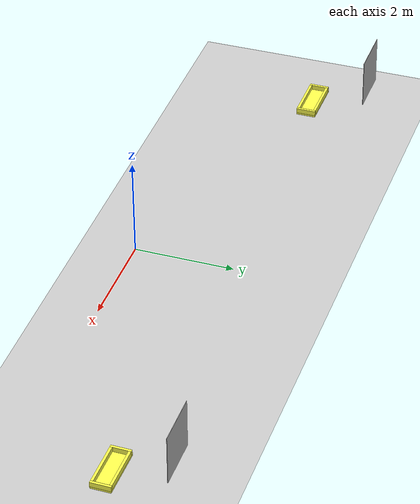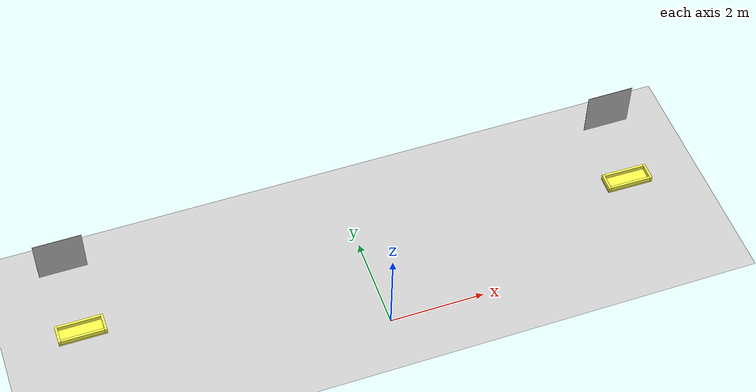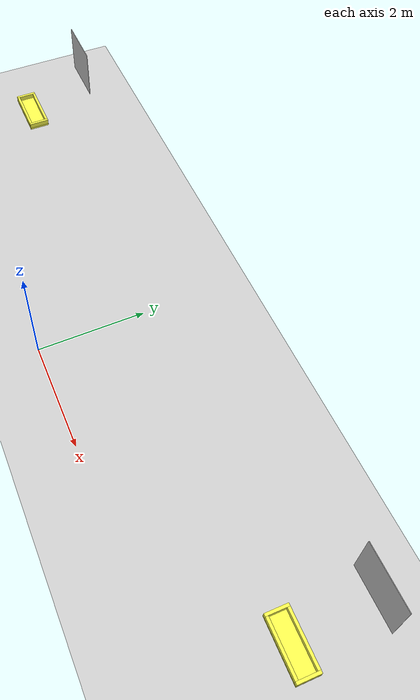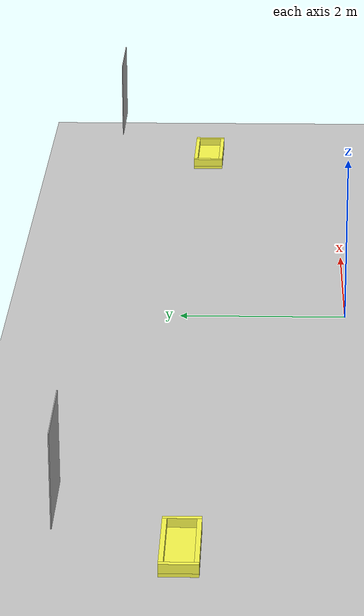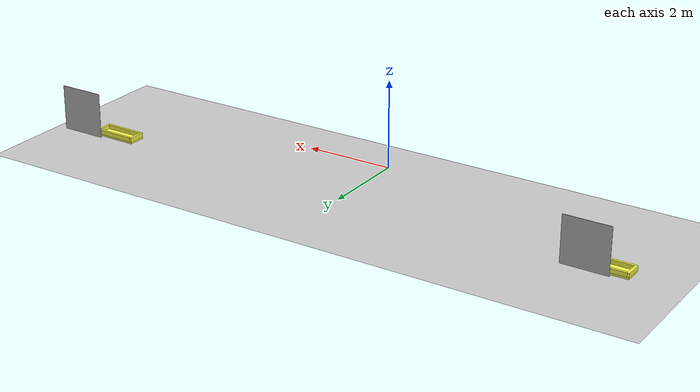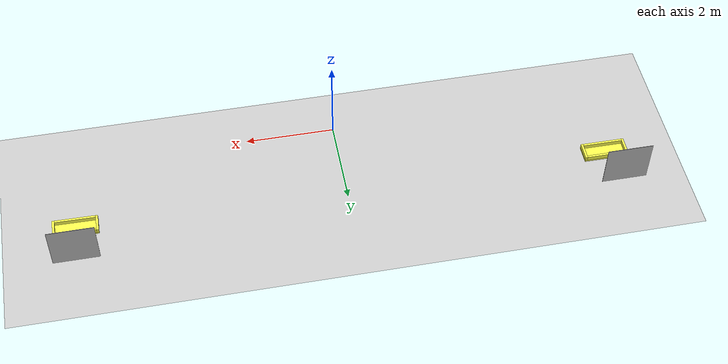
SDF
<sdf version="1.6">
 <world name="default">
  <light name="sun" type="directional">
   <pose>0 0 10 0 -0 0</pose>
   <diffuse>0.8 0.8 0.8 1</diffuse>
   <specular>0.2 0.2 0.2 1</specular>
   <attenuation>
    <range>1000</range>
    <constant>0.9</constant>
    <linear>0.01</linear>
    <quadratic>0.001</quadratic>
   </attenuation>
   <direction>-0.5 0.1 -0.9</direction>
  </light>
  <model name="ground_plane">
   <static>1</static>
   <link name="link">
    <collision name="collision">
     <geometry><plane><normal>0 0 1</normal><size>100 100</size></plane></geometry>
     <surface><friction><ode><mu>100</mu><mu2>50</mu2></ode></friction></surface>
    </collision>
    <visual name="visual">
     <cast_shadows>0</cast_shadows>
     <geometry><plane><normal>0 0 1</normal><size>100 100</size></plane></geometry>
     <material>
      <script><uri>file://media/materials/scripts/gazebo.material</uri><name>Gazebo/Grey</name></script>
     </material>
    </visual>
   </link>
  </model>
  <gravity>0 0 -9.8</gravity>
  <magnetic_field>6e-06 2.3e-05 -4.2e-05</magnetic_field>
  <atmosphere type="adiabatic"/>
  <physics name="default_physics" default="0" type="ode">
   <max_step_size>0.001</max_step_size>
   <real_time_factor>1</real_time_factor>
   <real_time_update_rate>1000</real_time_update_rate>
  </physics>
  <scene><ambient>0.4 0.4 0.4 1</ambient><background>0.7 0.7 0.7 1</background><shadows>1</shadows></scene>
  <audio><device>default</device></audio>
  <spherical_coordinates>
   <surface_model>EARTH_WGS84</surface_model>
   <latitude_deg>0</latitude_deg>
   <longitude_deg>0</longitude_deg>
   <elevation>0</elevation>
   <heading_deg>0</heading_deg>
  </spherical_coordinates>
  <model name="Apriltag36_11_00001">
   <link name="main">
    <visual name="main_Visual">
     <geometry><box><size>1 1 0.01</size></box></geometry>
     <material>
      <script>
       <uri>model://Apriltag36_11_00001/materials/scripts</uri>
       <uri>model://Apriltag36_11_00001/materials/textures</uri>
       <name>Apriltag36_11_00001</name>
      </script>
     </material>
    </visual>
   </link>
   <static>1</static>
   <pose>6 3 1 1.57 -0 0</pose>
  </model>
  <model name="Apriltag36_11_00002">
   <link name="main">
    <visual name="main_Visual">
     <geometry><box><size>1 1 0.01</size></box></geometry>
     <material>
      <script>
       <uri>model://Apriltag36_11_00002/materials/scripts</uri>
       <uri>model://Apriltag36_11_00002/materials/textures</uri>
       <name>Apriltag36_11_00002</name>
      </script>
     </material>
    </visual>
   </link>
   <static>1</static>
   <pose>-6 3 1 1.57 -0 0</pose>
  </model>
  <model name="place_box">
   <link name="link">
    <inertial>
     <mass>1</mass>
     <inertia>
      <ixx>0.166667</ixx>
      <ixy>0</ixy>
      <ixz>0</ixz>
      <iyy>0.166667</iyy>
      <iyz>0</iyz>
      <izz>0.166667</izz>
     </inertia>
    </inertial>
    <visual name="visual">
     <geometry><box><size>0.4 1 0.05</size></box></geometry>
     <material>
      <script><name>Gazebo/Grey</name><uri>file://media/materials/scripts/gazebo.material</uri></script>
      <shader type="vertex"><normal_map>__default__</normal_map></shader>
      <ambient>1 1 0.3 1</ambient>
      <diffuse>0.7 0.7 0.7 1</diffuse>
      <specular>0.01 0.01 0.01 1</specular>
      <emissive>0 0 0 1</emissive>
     </material>
    </visual>
    <collision name="collision">
     <geometry><box><size>0.4 1 0.05</size></box></geometry>
     <surface>
      <friction>
       <ode><mu>1</mu><mu2>1</mu2><fdir1>0 0 0</fdir1><slip1>0</slip1><slip2>0</slip2></ode>
       <torsional>
        <coefficient>1</coefficient>
        <patch_radius>0</patch_radius>
        <surface_radius>0</surface_radius>
        <use_patch_radius>1</use_patch_radius>
        <ode><slip>0</slip></ode>
       </torsional>
      </friction>
      <bounce><restitution_coefficient>0</restitution_coefficient><threshold>1e+06</threshold></bounce>
      <contact>
       <collide_without_contact>0</collide_without_contact>
       <collide_without_contact_bitmask>1</collide_without_contact_bitmask>
       <collide_bitmask>1</collide_bitmask>
       <ode>
        <soft_cfm>0</soft_cfm>
        <soft_erp>0.2</soft_erp>
        <kp>1e+13</kp>
        <kd>1</kd>
        <max_vel>0.01</max_vel>
        <min_depth>0</min_depth>
       </ode>
       <bullet>
        <split_impulse>1</split_impulse>
        <split_impulse_penetration_threshold>-0.01</split_impulse_penetration_threshold>
        <soft_cfm>0</soft_cfm>
        <soft_erp>0.2</soft_erp>
        <kp>1e+13</kp>
        <kd>1</kd>
       </bullet>
      </contact>
     </surface>
    </collision>
   </link>
   <link name="link_0">
    <inertial>
     <mass>1</mass>
     <inertia>
      <ixx>0.166667</ixx>
      <ixy>0</ixy>
      <ixz>0</ixz>
      <iyy>0.166667</iyy>
      <iyz>0</iyz>
      <izz>0.166667</izz>
     </inertia>
    </inertial>
    <pose>-0 -0.475 0.075 0 -0 0</pose>
    <visual name="visual">
     <geometry><box><size>0.4 0.05 0.1</size></box></geometry>
     <material>
      <lighting>1</lighting>
      <script><uri>file://media/materials/scripts/gazebo.material</uri><name>Gazebo/Grey</name></script>
      <shader type="vertex"><normal_map>__default__</normal_map></shader>
      <ambient>1 1 0.3 1</ambient>
      <diffuse>0.7 0.7 0.7 1</diffuse>
      <specular>0.01 0.01 0.01 1</specular>
      <emissive>0 0 0 1</emissive>
     </material>
    </visual>
    <collision name="collision">
     <geometry><box><size>0.4 0.05 0.1</size></box></geometry>
     <surface>
      <friction>
       <ode><mu>1</mu><mu2>1</mu2><fdir1>0 0 0</fdir1><slip1>0</slip1><slip2>0</slip2></ode>
       <torsional>
        <coefficient>1</coefficient>
        <patch_radius>0</patch_radius>
        <surface_radius>0</surface_radius>
        <use_patch_radius>1</use_patch_radius>
        <ode><slip>0</slip></ode>
       </torsional>
      </friction>
      <bounce><restitution_coefficient>0</restitution_coefficient><threshold>1e+06</threshold></bounce>
      <contact>
       <collide_without_contact>0</collide_without_contact>
       <collide_without_contact_bitmask>1</collide_without_contact_bitmask>
       <collide_bitmask>1</collide_bitmask>
       <ode>
        <soft_cfm>0</soft_cfm>
        <soft_erp>0.2</soft_erp>
        <kp>1e+13</kp>
        <kd>1</kd>
        <max_vel>0.01</max_vel>
        <min_depth>0</min_depth>
       </ode>
       <bullet>
        <split_impulse>1</split_impulse>
        <split_impulse_penetration_threshold>-0.01</split_impulse_penetration_threshold>
        <soft_cfm>0</soft_cfm>
        <soft_erp>0.2</soft_erp>
        <kp>1e+13</kp>
        <kd>1</kd>
       </bullet>
      </contact>
     </surface>
    </collision>
   </link>
   <link name="link_0_clone">
    <inertial>
     <mass>1</mass>
     <inertia>
      <ixx>0.166667</ixx>
      <ixy>0</ixy>
      <ixz>0</ixz>
      <iyy>0.166667</iyy>
      <iyz>0</iyz>
      <izz>0.166667</izz>
     </inertia>
    </inertial>
    <pose>-0 0.475 0.075 0 -0 0</pose>
    <visual name="visual">
     <geometry><box><size>0.4 0.05 0.1</size></box></geometry>
     <material>
      <lighting>1</lighting>
      <script><uri>file://media/materials/scripts/gazebo.material</uri><name>Gazebo/Grey</name></script>
      <shader type="vertex"><normal_map>__default__</normal_map></shader>
      <ambient>1 1 0.3 1</ambient>
      <diffuse>0.7 0.7 0.7 1</diffuse>
      <specular>0.01 0.01 0.01 1</specular>
      <emissive>0 0 0 1</emissive>
     </material>
    </visual>
    <collision name="collision">
     <geometry><box><size>0.4 0.05 0.1</size></box></geometry>
     <surface>
      <friction>
       <ode><mu>1</mu><mu2>1</mu2><fdir1>0 0 0</fdir1><slip1>0</slip1><slip2>0</slip2></ode>
       <torsional>
        <coefficient>1</coefficient>
        <patch_radius>0</patch_radius>
        <surface_radius>0</surface_radius>
        <use_patch_radius>1</use_patch_radius>
        <ode><slip>0</slip></ode>
       </torsional>
      </friction>
      <bounce><restitution_coefficient>0</restitution_coefficient><threshold>1e+06</threshold></bounce>
      <contact>
       <collide_without_contact>0</collide_without_contact>
       <collide_without_contact_bitmask>1</collide_without_contact_bitmask>
       <collide_bitmask>1</collide_bitmask>
       <ode>
        <soft_cfm>0</soft_cfm>
        <soft_erp>0.2</soft_erp>
        <kp>1e+13</kp>
        <kd>1</kd>
        <max_vel>0.01</max_vel>
        <min_depth>0</min_depth>
       </ode>
       <bullet>
        <split_impulse>1</split_impulse>
        <split_impulse_penetration_threshold>-0.01</split_impulse_penetration_threshold>
        <soft_cfm>0</soft_cfm>
        <soft_erp>0.2</soft_erp>
        <kp>1e+13</kp>
        <kd>1</kd>
       </bullet>
      </contact>
     </surface>
    </collision>
   </link>
   <link name="link_2">
    <inertial>
     <mass>1</mass>
     <inertia>
      <ixx>0.166667</ixx>
      <ixy>0</ixy>
      <ixz>0</ixz>
      <iyy>0.166667</iyy>
      <iyz>0</iyz>
      <izz>0.166667</izz>
     </inertia>
    </inertial>
    <pose>0.175 0 0.075 0 -0 0</pose>
    <visual name="visual">
     <geometry><box><size>0.05 0.9 0.1</size></box></geometry>
     <material>
      <lighting>1</lighting>
      <script><uri>file://media/materials/scripts/gazebo.material</uri><name>Gazebo/Grey</name></script>
      <shader type="vertex"><normal_map>__default__</normal_map></shader>
      <ambient>1 1 0.3 1</ambient>
      <diffuse>0.7 0.7 0.7 1</diffuse>
      <specular>0.01 0.01 0.01 1</specular>
      <emissive>0 0 0 1</emissive>
     </material>
    </visual>
    <collision name="collision">
     <geometry><box><size>0.05 0.9 0.1</size></box></geometry>
     <surface>
      <friction>
       <ode><mu>1</mu><mu2>1</mu2><fdir1>0 0 0</fdir1><slip1>0</slip1><slip2>0</slip2></ode>
       <torsional>
        <coefficient>1</coefficient>
        <patch_radius>0</patch_radius>
        <surface_radius>0</surface_radius>
        <use_patch_radius>1</use_patch_radius>
        <ode><slip>0</slip></ode>
       </torsional>
      </friction>
      <bounce><restitution_coefficient>0</restitution_coefficient><threshold>1e+06</threshold></bounce>
      <contact>
       <collide_without_contact>0</collide_without_contact>
       <collide_without_contact_bitmask>1</collide_without_contact_bitmask>
       <collide_bitmask>1</collide_bitmask>
       <ode>
        <soft_cfm>0</soft_cfm>
        <soft_erp>0.2</soft_erp>
        <kp>1e+13</kp>
        <kd>1</kd>
        <max_vel>0.01</max_vel>
        <min_depth>0</min_depth>
       </ode>
       <bullet>
        <split_impulse>1</split_impulse>
        <split_impulse_penetration_threshold>-0.01</split_impulse_penetration_threshold>
        <soft_cfm>0</soft_cfm>
        <soft_erp>0.2</soft_erp>
        <kp>1e+13</kp>
        <kd>1</kd>
       </bullet>
      </contact>
     </surface>
    </collision>
   </link>
   <link name="link_2_clone">
    <inertial>
     <mass>1</mass>
     <inertia>
      <ixx>0.166667</ixx>
      <ixy>0</ixy>
      <ixz>0</ixz>
      <iyy>0.166667</iyy>
      <iyz>0</iyz>
      <izz>0.166667</izz>
     </inertia>
    </inertial>
    <pose>-0.175 0 0.075 0 -0 0</pose>
    <visual name="visual">
     <geometry><box><size>0.05 0.9 0.1</size></box></geometry>
     <material>
      <lighting>1</lighting>
      <script><uri>file://media/materials/scripts/gazebo.material</uri><name>Gazebo/Grey</name></script>
      <shader type="vertex"><normal_map>__default__</normal_map></shader>
      <ambient>1 1 0.3 1</ambient>
      <diffuse>0.7 0.7 0.7 1</diffuse>
      <specular>0.01 0.01 0.01 1</specular>
      <emissive>0 0 0 1</emissive>
     </material>
    </visual>
    <collision name="collision">
     <geometry><box><size>0.05 0.9 0.1</size></box></geometry>
     <surface>
      <friction>
       <ode><mu>1</mu><mu2>1</mu2><fdir1>0 0 0</fdir1><slip1>0</slip1><slip2>0</slip2></ode>
       <torsional>
        <coefficient>1</coefficient>
        <patch_radius>0</patch_radius>
        <surface_radius>0</surface_radius>
        <use_patch_radius>1</use_patch_radius>
        <ode><slip>0</slip></ode>
       </torsional>
      </friction>
      <bounce><restitution_coefficient>0</restitution_coefficient><threshold>1e+06</threshold></bounce>
      <contact>
       <collide_without_contact>0</collide_without_contact>
       <collide_without_contact_bitmask>1</collide_without_contact_bitmask>
       <collide_bitmask>1</collide_bitmask>
       <ode>
        <soft_cfm>0</soft_cfm>
        <soft_erp>0.2</soft_erp>
        <kp>1e+13</kp>
        <kd>1</kd>
        <max_vel>0.01</max_vel>
        <min_depth>0</min_depth>
       </ode>
       <bullet>
        <split_impulse>1</split_impulse>
        <split_impulse_penetration_threshold>-0.01</split_impulse_penetration_threshold>
        <soft_cfm>0</soft_cfm>
        <soft_erp>0.2</soft_erp>
        <kp>1e+13</kp>
        <kd>1</kd>
       </bullet>
      </contact>
     </surface>
    </collision>
   </link>
   <static>1</static>
   <allow_auto_disable>0</allow_auto_disable>
   <pose>6.02168 1.78722 0 0 0 -1.58406</pose>
  </model>
  <model name="place_box_clone">
   <link name="link">
    <inertial>
     <mass>1</mass>
     <inertia>
      <ixx>0.166667</ixx>
      <ixy>0</ixy>
      <ixz>0</ixz>
      <iyy>0.166667</iyy>
      <iyz>0</iyz>
      <izz>0.166667</izz>
     </inertia>
    </inertial>
    <visual name="visual">
     <geometry><box><size>0.4 1 0.05</size></box></geometry>
     <material>
      <script><name>Gazebo/Grey</name><uri>file://media/materials/scripts/gazebo.material</uri></script>
      <shader type="vertex"><normal_map>__default__</normal_map></shader>
      <ambient>1 1 0.3 1</ambient>
      <diffuse>0.7 0.7 0.7 1</diffuse>
      <specular>0.01 0.01 0.01 1</specular>
      <emissive>0 0 0 1</emissive>
     </material>
    </visual>
    <collision name="collision">
     <geometry><box><size>0.4 1 0.05</size></box></geometry>
     <surface>
      <friction>
       <ode><mu>1</mu><mu2>1</mu2><fdir1>0 0 0</fdir1><slip1>0</slip1><slip2>0</slip2></ode>
       <torsional>
        <coefficient>1</coefficient>
        <patch_radius>0</patch_radius>
        <surface_radius>0</surface_radius>
        <use_patch_radius>1</use_patch_radius>
        <ode><slip>0</slip></ode>
       </torsional>
      </friction>
      <bounce><restitution_coefficient>0</restitution_coefficient><threshold>1e+06</threshold></bounce>
      <contact>
       <collide_without_contact>0</collide_without_contact>
       <collide_without_contact_bitmask>1</collide_without_contact_bitmask>
       <collide_bitmask>1</collide_bitmask>
       <ode>
        <soft_cfm>0</soft_cfm>
        <soft_erp>0.2</soft_erp>
        <kp>1e+13</kp>
        <kd>1</kd>
        <max_vel>0.01</max_vel>
        <min_depth>0</min_depth>
       </ode>
       <bullet>
        <split_impulse>1</split_impulse>
        <split_impulse_penetration_threshold>-0.01</split_impulse_penetration_threshold>
        <soft_cfm>0</soft_cfm>
        <soft_erp>0.2</soft_erp>
        <kp>1e+13</kp>
        <kd>1</kd>
       </bullet>
      </contact>
     </surface>
    </collision>
   </link>
   <link name="link_0">
    <inertial>
     <mass>1</mass>
     <inertia>
      <ixx>0.166667</ixx>
      <ixy>0</ixy>
      <ixz>0</ixz>
      <iyy>0.166667</iyy>
      <iyz>0</iyz>
      <izz>0.166667</izz>
     </inertia>
    </inertial>
    <pose>-0 -0.475 0.075 0 -0 0</pose>
    <visual name="visual">
     <geometry><box><size>0.4 0.05 0.1</size></box></geometry>
     <material>
      <lighting>1</lighting>
      <script><uri>file://media/materials/scripts/gazebo.material</uri><name>Gazebo/Grey</name></script>
      <shader type="vertex"><normal_map>__default__</normal_map></shader>
      <ambient>1 1 0.3 1</ambient>
      <diffuse>0.7 0.7 0.7 1</diffuse>
      <specular>0.01 0.01 0.01 1</specular>
      <emissive>0 0 0 1</emissive>
     </material>
    </visual>
    <collision name="collision">
     <geometry><box><size>0.4 0.05 0.1</size></box></geometry>
     <surface>
      <friction>
       <ode><mu>1</mu><mu2>1</mu2><fdir1>0 0 0</fdir1><slip1>0</slip1><slip2>0</slip2></ode>
       <torsional>
        <coefficient>1</coefficient>
        <patch_radius>0</patch_radius>
        <surface_radius>0</surface_radius>
        <use_patch_radius>1</use_patch_radius>
        <ode><slip>0</slip></ode>
       </torsional>
      </friction>
      <bounce><restitution_coefficient>0</restitution_coefficient><threshold>1e+06</threshold></bounce>
      <contact>
       <collide_without_contact>0</collide_without_contact>
       <collide_without_contact_bitmask>1</collide_without_contact_bitmask>
       <collide_bitmask>1</collide_bitmask>
       <ode>
        <soft_cfm>0</soft_cfm>
        <soft_erp>0.2</soft_erp>
        <kp>1e+13</kp>
        <kd>1</kd>
        <max_vel>0.01</max_vel>
        <min_depth>0</min_depth>
       </ode>
       <bullet>
        <split_impulse>1</split_impulse>
        <split_impulse_penetration_threshold>-0.01</split_impulse_penetration_threshold>
        <soft_cfm>0</soft_cfm>
        <soft_erp>0.2</soft_erp>
        <kp>1e+13</kp>
        <kd>1</kd>
       </bullet>
      </contact>
     </surface>
    </collision>
   </link>
   <link name="link_0_clone">
    <inertial>
     <mass>1</mass>
     <inertia>
      <ixx>0.166667</ixx>
      <ixy>0</ixy>
      <ixz>0</ixz>
      <iyy>0.166667</iyy>
      <iyz>0</iyz>
      <izz>0.166667</izz>
     </inertia>
    </inertial>
    <pose>-0 0.475 0.075 0 -0 0</pose>
    <visual name="visual">
     <geometry><box><size>0.4 0.05 0.1</size></box></geometry>
     <material>
      <lighting>1</lighting>
      <script><uri>file://media/materials/scripts/gazebo.material</uri><name>Gazebo/Grey</name></script>
      <shader type="vertex"><normal_map>__default__</normal_map></shader>
      <ambient>1 1 0.3 1</ambient>
      <diffuse>0.7 0.7 0.7 1</diffuse>
      <specular>0.01 0.01 0.01 1</specular>
      <emissive>0 0 0 1</emissive>
     </material>
    </visual>
    <collision name="collision">
     <geometry><box><size>0.4 0.05 0.1</size></box></geometry>
     <surface>
      <friction>
       <ode><mu>1</mu><mu2>1</mu2><fdir1>0 0 0</fdir1><slip1>0</slip1><slip2>0</slip2></ode>
       <torsional>
        <coefficient>1</coefficient>
        <patch_radius>0</patch_radius>
        <surface_radius>0</surface_radius>
        <use_patch_radius>1</use_patch_radius>
        <ode><slip>0</slip></ode>
       </torsional>
      </friction>
      <bounce><restitution_coefficient>0</restitution_coefficient><threshold>1e+06</threshold></bounce>
      <contact>
       <collide_without_contact>0</collide_without_contact>
       <collide_without_contact_bitmask>1</collide_without_contact_bitmask>
       <collide_bitmask>1</collide_bitmask>
       <ode>
        <soft_cfm>0</soft_cfm>
        <soft_erp>0.2</soft_erp>
        <kp>1e+13</kp>
        <kd>1</kd>
        <max_vel>0.01</max_vel>
        <min_depth>0</min_depth>
       </ode>
       <bullet>
        <split_impulse>1</split_impulse>
        <split_impulse_penetration_threshold>-0.01</split_impulse_penetration_threshold>
        <soft_cfm>0</soft_cfm>
        <soft_erp>0.2</soft_erp>
        <kp>1e+13</kp>
        <kd>1</kd>
       </bullet>
      </contact>
     </surface>
    </collision>
   </link>
   <link name="link_2">
    <inertial>
     <mass>1</mass>
     <inertia>
      <ixx>0.166667</ixx>
      <ixy>0</ixy>
      <ixz>0</ixz>
      <iyy>0.166667</iyy>
      <iyz>0</iyz>
      <izz>0.166667</izz>
     </inertia>
    </inertial>
    <pose>0.175 0 0.075 0 -0 0</pose>
    <visual name="visual">
     <geometry><box><size>0.05 0.9 0.1</size></box></geometry>
     <material>
      <lighting>1</lighting>
      <script><uri>file://media/materials/scripts/gazebo.material</uri><name>Gazebo/Grey</name></script>
      <shader type="vertex"><normal_map>__default__</normal_map></shader>
      <ambient>1 1 0.3 1</ambient>
      <diffuse>0.7 0.7 0.7 1</diffuse>
      <specular>0.01 0.01 0.01 1</specular>
      <emissive>0 0 0 1</emissive>
     </material>
    </visual>
    <collision name="collision">
     <geometry><box><size>0.05 0.9 0.1</size></box></geometry>
     <surface>
      <friction>
       <ode><mu>1</mu><mu2>1</mu2><fdir1>0 0 0</fdir1><slip1>0</slip1><slip2>0</slip2></ode>
       <torsional>
        <coefficient>1</coefficient>
        <patch_radius>0</patch_radius>
        <surface_radius>0</surface_radius>
        <use_patch_radius>1</use_patch_radius>
        <ode><slip>0</slip></ode>
       </torsional>
      </friction>
      <bounce><restitution_coefficient>0</restitution_coefficient><threshold>1e+06</threshold></bounce>
      <contact>
       <collide_without_contact>0</collide_without_contact>
       <collide_without_contact_bitmask>1</collide_without_contact_bitmask>
       <collide_bitmask>1</collide_bitmask>
       <ode>
        <soft_cfm>0</soft_cfm>
        <soft_erp>0.2</soft_erp>
        <kp>1e+13</kp>
        <kd>1</kd>
        <max_vel>0.01</max_vel>
        <min_depth>0</min_depth>
       </ode>
       <bullet>
        <split_impulse>1</split_impulse>
        <split_impulse_penetration_threshold>-0.01</split_impulse_penetration_threshold>
        <soft_cfm>0</soft_cfm>
        <soft_erp>0.2</soft_erp>
        <kp>1e+13</kp>
        <kd>1</kd>
       </bullet>
      </contact>
     </surface>
    </collision>
   </link>
   <link name="link_2_clone">
    <inertial>
     <mass>1</mass>
     <inertia>
      <ixx>0.166667</ixx>
      <ixy>0</ixy>
      <ixz>0</ixz>
      <iyy>0.166667</iyy>
      <iyz>0</iyz>
      <izz>0.166667</izz>
     </inertia>
    </inertial>
    <pose>-0.175 0 0.075 0 -0 0</pose>
    <visual name="visual">
     <geometry><box><size>0.05 0.9 0.1</size></box></geometry>
     <material>
      <lighting>1</lighting>
      <script><uri>file://media/materials/scripts/gazebo.material</uri><name>Gazebo/Grey</name></script>
      <shader type="vertex"><normal_map>__default__</normal_map></shader>
      <ambient>1 1 0.3 1</ambient>
      <diffuse>0.7 0.7 0.7 1</diffuse>
      <specular>0.01 0.01 0.01 1</specular>
      <emissive>0 0 0 1</emissive>
     </material>
    </visual>
    <collision name="collision">
     <geometry><box><size>0.05 0.9 0.1</size></box></geometry>
     <surface>
      <friction>
       <ode><mu>1</mu><mu2>1</mu2><fdir1>0 0 0</fdir1><slip1>0</slip1><slip2>0</slip2></ode>
       <torsional>
        <coefficient>1</coefficient>
        <patch_radius>0</patch_radius>
        <surface_radius>0</surface_radius>
        <use_patch_radius>1</use_patch_radius>
        <ode><slip>0</slip></ode>
       </torsional>
      </friction>
      <bounce><restitution_coefficient>0</restitution_coefficient><threshold>1e+06</threshold></bounce>
      <contact>
       <collide_without_contact>0</collide_without_contact>
       <collide_without_contact_bitmask>1</collide_without_contact_bitmask>
       <collide_bitmask>1</collide_bitmask>
       <ode>
        <soft_cfm>0</soft_cfm>
        <soft_erp>0.2</soft_erp>
        <kp>1e+13</kp>
        <kd>1</kd>
        <max_vel>0.01</max_vel>
        <min_depth>0</min_depth>
       </ode>
       <bullet>
        <split_impulse>1</split_impulse>
        <split_impulse_penetration_threshold>-0.01</split_impulse_penetration_threshold>
        <soft_cfm>0</soft_cfm>
        <soft_erp>0.2</soft_erp>
        <kp>1e+13</kp>
        <kd>1</kd>
       </bullet>
      </contact>
     </surface>
    </collision>
   </link>
   <static>1</static>
   <allow_auto_disable>0</allow_auto_disable>
   <pose>-5.98075 1.7872 0 0 0 -1.5734</pose>
  </model>
 </world>
</sdf>
